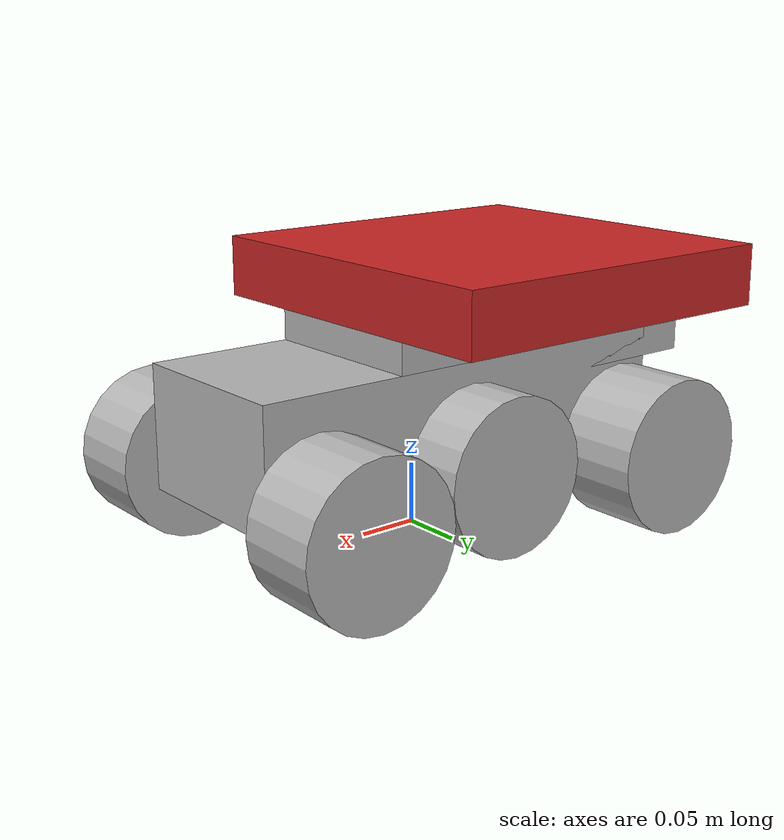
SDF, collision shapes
<?xml version="1.0"?>
<sdf version="1.5">
  <model name="spikebot">

	<link name='chassis'>
            <pose>0 0 .10 0 0 0</pose>
             <collision name='collision'>
              <geometry>
                <box>
                  <size>.38 .15 .10</size>
                </box>
              </geometry>
            </collision>
      <inertial>
        <mass>30</mass>
        <pose> 0 0 0 0 0 0</pose>
        <inertia>
          <ixx>2.2343</ixx>
          <ixy>-0.023642</ixy>
          <ixz>0.275174</ixz>
          <iyy>3.42518</iyy>
          <iyz>0.00239624</iyz>
          <izz>2.1241</izz>
        </inertia>
      </inertial>
	<visual name='visual'>
              <geometry>
                <box>
                  <size>.38 .15 .10</size>
                </box>
              </geometry>
            </visual>
          </link>

	<link name='connector'>
            <pose>-0.08 0.0 .15 0 0 0</pose>
             <collision name='connector_collision'>
              <geometry>
                <box>
                  <size>.30 .15 .05</size>
                </box>
              </geometry>
            </collision>
	<inertial>
        <mass>33.855</mass>
        <pose> 0 0 0 0 0 0</pose>
        <inertia>
          <ixx>2.2343</ixx>
          <ixy>-0.023642</ixy>
          <ixz>0.275174</ixz>
          <iyy>3.42518</iyy>
          <iyz>0.00239624</iyz>
          <izz>2.1241</izz>
        </inertia>
      </inertial>
	<visual name='connector'>
              <geometry>
                <box>
                  <size>.30 .15 .10</size>
                </box>
              </geometry>
            </visual>
          </link>
      <joint type="fixed" name="chassis_connector_hinge">
        <pose>0 0 0.03 0 0 0</pose>
        <child>connector</child>
        <parent>chassis</parent>
        <axis>
          <xyz>1 1 1</xyz>
        </axis>
      </joint>

	<link name='spinnaker'>
            <pose>-0.08 0 .20 0 0 0</pose>
	    <collision name='spinnaker_collision'>
              <geometry>
                <box>
                  <size>.30 .30 .05</size>
                </box>
              </geometry>
            </collision>
	<inertial>
        <mass>33.855</mass>
        <pose> 0 0 0 0 0 0</pose>
        <inertia>
          <ixx>2.2343</ixx>
          <ixy>-0.023642</ixy>
          <ixz>0.275174</ixz>
          <iyy>3.42518</iyy>
          <iyz>0.00239624</iyz>
          <izz>2.1241</izz>
        </inertia>
      </inertial>
	<visual name='spinnaker'>
              <geometry>
                <box>
                  <size>.30 .30 .05</size>
                </box>
              </geometry>
             <material>
				<script>
					<uri>file://media/materials/scripts/gazebo.material</uri>
					<name>Gazebo/Red</name>
				</script>
			</material>
            </visual>
          </link>
      <joint type="fixed" name="connector_spinnaker_hinge">
        <pose>0 0 0.03 0 0 0</pose>
        <child>spinnaker</child>
        <parent>connector</parent>
        <axis>
          <xyz>1 1 1</xyz>
        </axis>
      </joint>

           <link name="front_left_wheel">
        <pose>0.15 0.12 0.063 0 1.5707 1.5707</pose>
      <inertial>
        <mass>2.6357</mass>
        <pose>0 0 0 0 0 0</pose>
        <inertia>
          <ixx>0.0246688</ixx>
          <ixy>0</ixy>
          <ixz>0</ixz>
          <iyy>0.0246688</iyy>
          <iyz>0</iyz>
          <izz>0.0441058</izz>
        </inertia>
      </inertial>
        <collision name="front_left_wheel_collision">
          <geometry>
            <cylinder>
              <radius>.063</radius>
              <length>.07</length>
            </cylinder>
          </geometry>
	<surface>
          <friction>
            <ode>
              <mu>100000.0</mu>
              <mu2>100000.0</mu2>
              <slip1>0.0</slip1>
              <slip2>0.0</slip2>
            </ode>
          </friction>
        </surface>
        </collision>
        <visual name="front_left_wheel">
          <geometry>
            <cylinder>
              <radius>.063</radius>
              <length>.07</length>
            </cylinder>
          </geometry>
        </visual>
      </link>
   <joint name="front_left_joint" type="revolute">
      <sensor name="front_left_sensor" type="force_torque"><force_torque></force_torque></sensor>
      <parent>chassis</parent>
      <child>front_left_wheel</child>
      <axis>
        <xyz>0 1 0</xyz>
        <use_parent_model_frame>true</use_parent_model_frame>
      </axis>
      <physics>
        <provide_feedback>true</provide_feedback>
        <ode>
          <limit>
            <cfm>0.000000</cfm>
            <erp>0.900000</erp>
          </limit>
        </ode>
      </physics>
    </joint>

      <link name="front_right_wheel">
        <pose>0.15 -0.12 0.063 0 1.5707 1.5707</pose>
      <inertial>
        <mass>2.6357</mass>
        <pose>0 0 0 0 0 0</pose>
        <inertia>
          <ixx>0.0246688</ixx>
          <ixy>0</ixy>
          <ixz>0</ixz>
          <iyy>0.0246688</iyy>
          <iyz>0</iyz>
          <izz>0.0441058</izz>
        </inertia>
      </inertial>
        <collision name="front_right_wheel_collision">
          <geometry>
            <cylinder>
              <radius>.063</radius>
              <length>.07</length>
            </cylinder>
          </geometry>
	<surface>
          <friction>
            <ode>
              <mu>100000.0</mu>
              <mu2>100000.0</mu2>
              <slip1>0.0</slip1>
              <slip2>0.0</slip2>
            </ode>
          </friction>
        </surface>
        </collision>
        <visual name="front_right_wheel">
          <geometry>
            <cylinder>
              <radius>.063</radius>
              <length>.07</length>
            </cylinder>
          </geometry>
        </visual>
      </link>
    <joint name="front_right_joint" type="revolute">
      <sensor name="front_right_sensor" type="force_torque"><force_torque></force_torque></sensor>
      <parent>chassis</parent>
      <child>front_right_wheel</child>
      <axis>
        <xyz>0 1 0</xyz>
        <use_parent_model_frame>true</use_parent_model_frame>
      </axis>
      <physics>
        <provide_feedback>true</provide_feedback>
        <ode>
          <limit>
            <cfm>0.000000</cfm>
            <erp>0.900000</erp>
          </limit>
        </ode>
      </physics>
    </joint>

         <link name="left_wheel_middle">
        <pose>0.0 0.09 0.07 0 1.5707 1.5707</pose>
        <collision name="collision">
          <geometry>
            <cylinder>
              <radius>.063</radius>
              <length>.07</length>
            </cylinder>
          </geometry>
        </collision>
        <visual name="visual">
          <geometry>
            <cylinder>
              <radius>.063</radius>
              <length>.07</length>
            </cylinder>
          </geometry>
        </visual>
      </link>

      <link name="right_wheel_middle">
        <pose>0.0 -0.09 0.07 0 1.5707 1.5707</pose>
        <collision name="collision">
          <geometry>
            <cylinder>
              <radius>.063</radius>
              <length>.07</length>
            </cylinder>
          </geometry>
        </collision>
        <visual name="visual">
          <geometry>
            <cylinder>
              <radius>.063</radius>
              <length>.07</length>
            </cylinder>
          </geometry>
        </visual>
      </link>

       <link name="back_left_wheel">
        <pose>-0.15 0.12 0.063 0 1.5707 1.5707</pose>
      <inertial>
        <mass>2.6357</mass>
        <pose>0 0 0 0 0 0</pose>
        <inertia>
          <ixx>0.0246688</ixx>
          <ixy>0</ixy>
          <ixz>0</ixz>
          <iyy>0.0246688</iyy>
          <iyz>0</iyz>
          <izz>0.0441058</izz>
        </inertia>
      </inertial>
        <collision name="back_left_wheel_collision">
          <geometry>
            <cylinder>
              <radius>.063</radius>
              <length>.07</length>
            </cylinder>
          </geometry>
	<surface>
          <friction>
            <ode>
              <mu>100000.0</mu>
              <mu2>100000.0</mu2>
              <slip1>0.0</slip1>
              <slip2>0.0</slip2>
            </ode>
          </friction>
        </surface>
        </collision>
        <visual name="back_left_wheel">
          <geometry>
            <cylinder>
              <radius>.063</radius>
              <length>.07</length>
            </cylinder>
          </geometry>
        </visual>
      </link>
      <joint name="back_left_joint" type="revolute">
      <sensor name="back_left_sensor" type="force_torque"><force_torque></force_torque></sensor>
      <parent>chassis</parent>
      <child>back_left_wheel</child>
      <axis>
        <xyz>0 1 0</xyz>
        <use_parent_model_frame>true</use_parent_model_frame>
      </axis>
      <physics>
        <provide_feedback>true</provide_feedback>
        <ode>
          <limit>
            <cfm>0.000000</cfm>
            <erp>0.900000</erp>
          </limit>
        </ode>
      </physics>
    </joint>

      <link name="back_right_wheel">
        <pose>-0.15 -0.12 0.063 0 1.5707 1.5707</pose>
      <inertial>
        <mass>2.6357</mass>
        <pose>0 0 0 0 0 0</pose>
        <inertia>
          <ixx>0.0246688</ixx>
          <ixy>0</ixy>
          <ixz>0</ixz>
          <iyy>0.0246688</iyy>
          <iyz>0</iyz>
          <izz>0.0441058</izz>
        </inertia>
      </inertial>
        <collision name="back_right_wheel_collision">
          <geometry>
            <cylinder>
              <radius>.063</radius>
              <length>.07</length>
            </cylinder>
          </geometry>
	<surface>
          <friction>
            <ode>
              <mu>100000.0</mu>
              <mu2>100000.0</mu2>
              <slip1>0.0</slip1>
              <slip2>0.0</slip2>
            </ode>
          </friction>
        </surface>
        </collision>
        <visual name="back_right_wheel">
          <geometry>
            <cylinder>
              <radius>.063</radius>
              <length>.07</length>
            </cylinder>
          </geometry>
        </visual>
      </link>
      <joint name="back_right_joint" type="revolute">
      <sensor name="back_right_sensor" type="force_torque"><force_torque></force_torque></sensor>
      <parent>chassis</parent>
      <child>back_right_wheel</child>
      <axis>
        <xyz>0 1 0</xyz>
        <use_parent_model_frame>true</use_parent_model_frame>
      </axis>
      <physics>
        <provide_feedback>true</provide_feedback>
        <ode>
          <limit>
            <cfm>0.000000</cfm>
            <erp>0.900000</erp>
          </limit>
        </ode>
      </physics>
    </joint>

          <joint type="fixed" name="left_wheel_middle_hinge">
        <pose>0 0 -0.03 0 0 0</pose>
        <child>left_wheel_middle</child>
        <parent>chassis</parent>
        <axis>
          <xyz>0 1 0</xyz>
        </axis>
      </joint>

      <joint type="fixed" name="right_wheel_middle_hinge">
        <pose>0 0 0.03 0 0 0</pose>
        <child>right_wheel_middle</child>
        <parent>chassis</parent>
        <axis>
          <xyz>0 1 0</xyz>
        </axis>
      </joint>

<link name='CameraMountRightXAxis_link'>
      <pose frame=''>0 0 0 0 0 0</pose>
      <inertial>
        <pose frame=''>0 0 0 0 0 0</pose>
        <mass>0.21</mass>
        <inertia>
          <ixx>3.61792</ixx>
          <ixy>-2.38095e-09</ixy>
          <ixz>0</ixz>
          <iyy>3.60464</iyy>
          <iyz>0</iyz>
          <izz>3.61794</izz>
        </inertia>
      </inertial>

      <visual name='CameraMountRightXAxis_link_visual'>
        <pose frame=''>0.16 0.25 0.0 1.63 -1.5707963 0</pose>
        <geometry>
          <mesh>
            <scale>1 1 1</scale>
            <uri>model://TUM_Head/meshes/VIZ_CameraMountRightXAxis.dae</uri>
          </mesh>
        </geometry>
      </visual>

      <visual name='CameraMountRightXAxis_link_fixed_joint_lump__cameraright_link_visual_1'>
        <pose frame=''>0.16 0.25 0.0 1.63 -1.5707963 0</pose>
        <geometry>
          <mesh>
            <scale>1 1 1</scale>
            <uri>model://TUM_Head/meshes/cameraright.dae</uri>
          </mesh>
        </geometry>
      </visual>

      <gravity>1</gravity>

      <velocity_decay/>

      <self_collide>0</self_collide>

      <sensor name='camera_dvs_left' type='camera'>
        <visualize>1</visualize>
        <camera name='camera_dvs_left'>
          <horizontal_fov>2.44346</horizontal_fov>
          <image>
            <width>128</width>
            <height>40</height>
          </image>
          <clip>
            <near>0.1</near>
            <far>5</far>
          </clip>
        </camera>
        <always_on>1</always_on>
        <update_rate>200</update_rate>
        <visualize>0</visualize>
        <plugin name='camera_controller' filename='libgazebo_dvs_plugin.so'>
          <cameraName>edvs</cameraName>
          <robotNamespace>spikerobot</robotNamespace>
          <eventThreshold>10</eventThreshold>
          <cameraInfoTopicName>camera_info</cameraInfoTopicName>
        </plugin>
        <pose frame=''> 0.15 0 0.25 0 0 0 </pose>
      </sensor>
    </link>

    <joint name='CameraMountRightXAxis_joint' type='fixed'>
      <child>CameraMountRightXAxis_link</child>
      <parent>chassis</parent>
      <axis>
        <xyz>1 0 0</xyz>
        <limit>
          <lower>-1.5708</lower>
          <upper>1.5708</upper>
          <effort>100</effort>
          <velocity>1</velocity>
        </limit>
        <dynamics>
          <damping>1</damping>
          <friction>0</friction>
          <spring_reference>0</spring_reference>
          <spring_stiffness>0</spring_stiffness>
        </dynamics>
        <use_parent_model_frame>1</use_parent_model_frame>
      </axis>
    </joint>

    <plugin name="husky_diff_controller" filename="libhusky_gazebo_plugins.so">
      <alwaysOn>true</alwaysOn>
      <updateRate>100.0</updateRate>
      <backLeftJoint>back_left_joint</backLeftJoint>
      <backRightJoint>back_right_joint</backRightJoint>
      <frontLeftJoint>front_left_joint</frontLeftJoint>
      <frontRightJoint>front_right_joint</frontRightJoint>
      <wheelSeparation>0.5709</wheelSeparation>
      <wheelDiameter>0.3555</wheelDiameter>
      <torque>35</torque>
    </plugin>

  </model>
</sdf>
